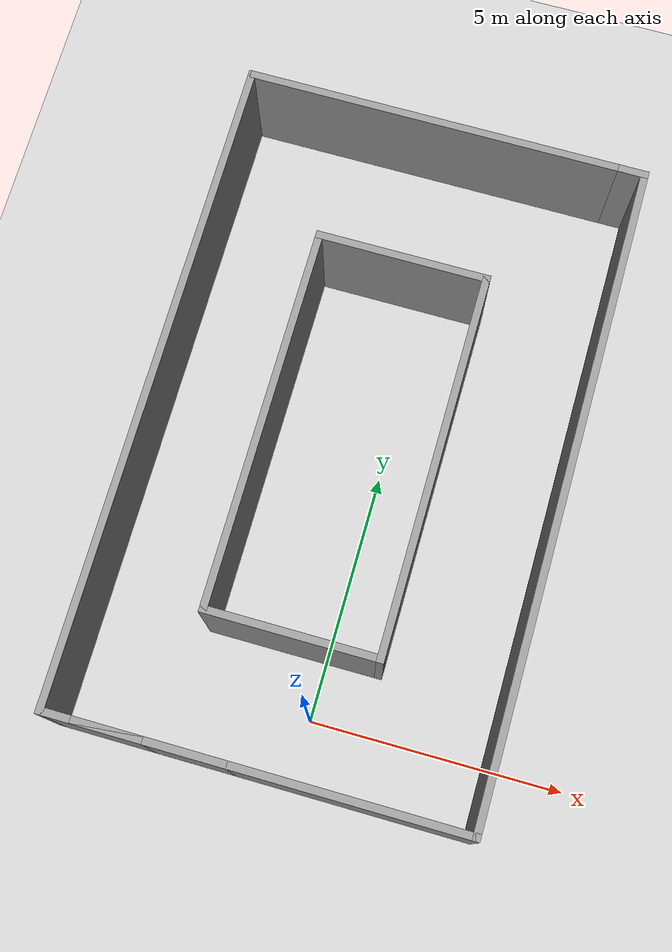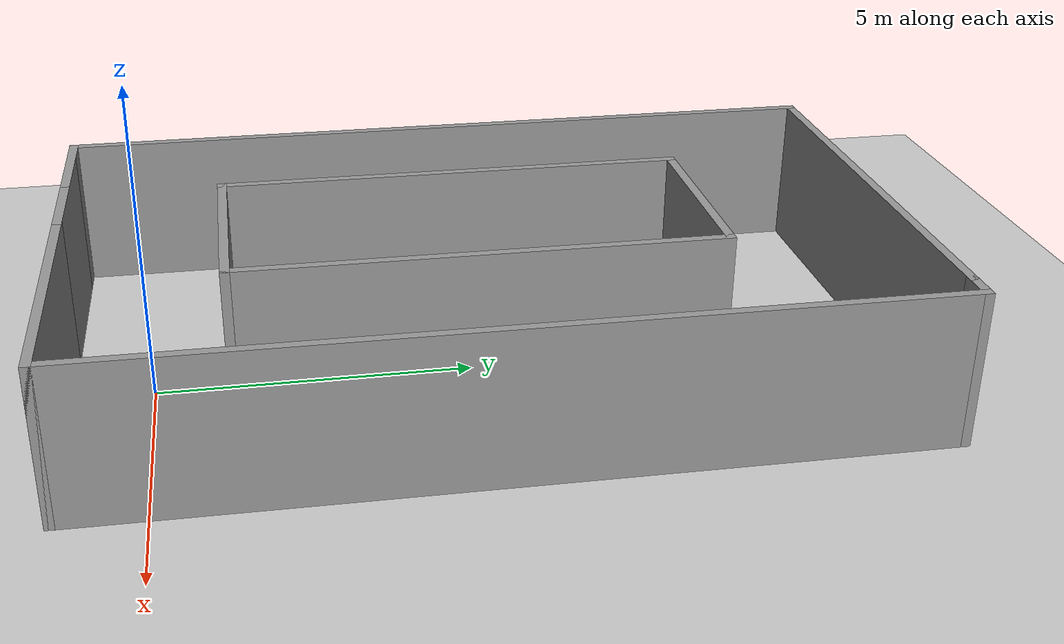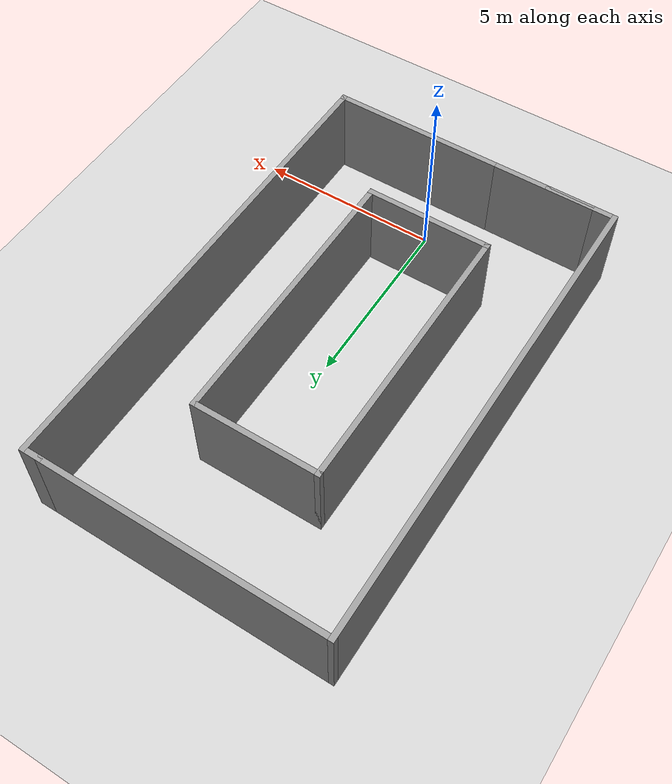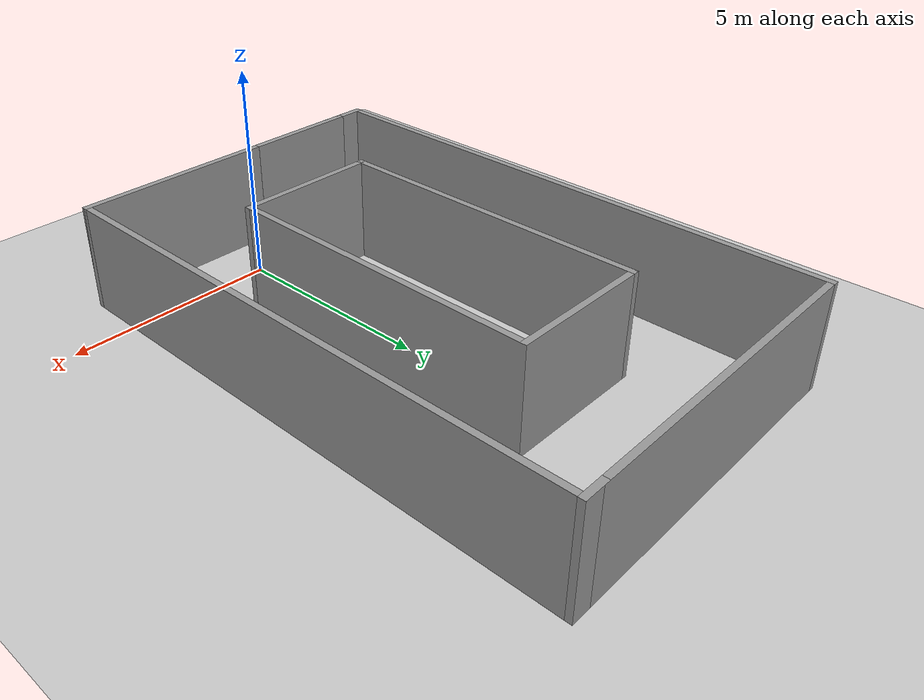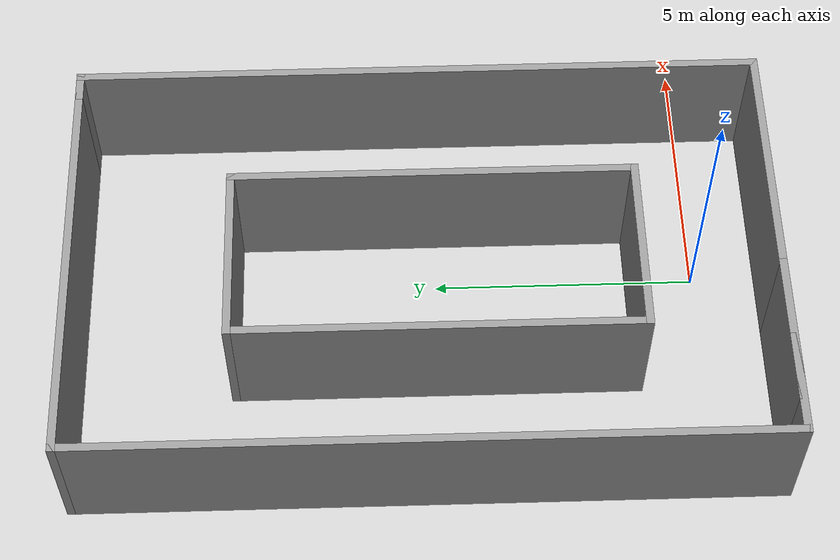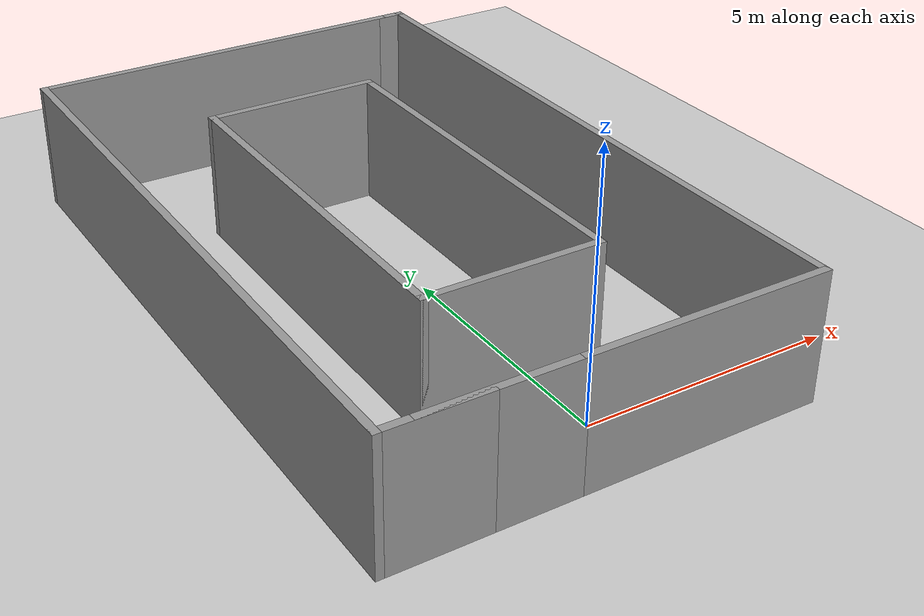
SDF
<sdf version="1.6">
 <world name="default">
  <light name="sun" type="directional">
   <pose>0 0 10 0 -0 0</pose>
   <diffuse>0.8 0.8 0.8 1</diffuse>
   <specular>0.2 0.2 0.2 1</specular>
   <attenuation>
    <range>1000</range>
    <constant>0.9</constant>
    <linear>0.01</linear>
    <quadratic>0.001</quadratic>
   </attenuation>
   <direction>-0.5 0.1 -0.9</direction>
  </light>
  <model name="ground_plane">
   <static>1</static>
   <link name="link">
    <collision name="collision">
     <geometry><plane><normal>0 0 1</normal><size>100 100</size></plane></geometry>
     <surface>
      <contact><collide_bitmask>65535</collide_bitmask></contact>
      <friction><ode><mu>100</mu><mu2>50</mu2></ode></friction>
     </surface>
    </collision>
    <visual name="visual">
     <cast_shadows>0</cast_shadows>
     <geometry><plane><normal>0 0 1</normal><size>100 100</size></plane></geometry>
     <material>
      <script><uri>file://media/materials/scripts/gazebo.material</uri><name>Gazebo/Grey</name></script>
     </material>
    </visual>
   </link>
  </model>
  <gravity>0 0 -9.8</gravity>
  <magnetic_field>6e-06 2.3e-05 -4.2e-05</magnetic_field>
  <atmosphere type="adiabatic"/>
  <physics name="default_physics" default="0" type="ode">
   <max_step_size>0.001</max_step_size>
   <real_time_factor>1</real_time_factor>
   <real_time_update_rate>1000</real_time_update_rate>
  </physics>
  <scene><ambient>0.4 0.4 0.4 1</ambient><background>0.7 0.7 0.7 1</background><shadows>1</shadows></scene>
  <audio><device>default</device></audio>
  <spherical_coordinates>
   <surface_model>EARTH_WGS84</surface_model>
   <latitude_deg>0</latitude_deg>
   <longitude_deg>0</longitude_deg>
   <elevation>0</elevation>
   <heading_deg>0</heading_deg>
  </spherical_coordinates>
  <model name="drug_!">
   <pose>-0.538753 5.24496 0 0 -0 1.56797</pose>
   <link name="Wall_0">
    <collision name="Wall_0_Collision">
     <geometry><box><size>2.91909 0.15 2.5</size></box></geometry>
     <pose>0 0 1.25 0 -0 0</pose>
    </collision>
    <visual name="Wall_0_Visual">
     <pose>0 0 1.25 0 -0 0</pose>
     <geometry><box><size>2.91909 0.15 2.5</size></box></geometry>
     <material>
      <script><uri>file://media/materials/scripts/gazebo.material</uri><name>Gazebo/Grey</name></script>
      <ambient>1 1 1 1</ambient>
     </material>
     <meta><layer>0</layer></meta>
    </visual>
    <pose>-6.55 1.99523 0 0 -0 -1.5708</pose>
   </link>
   <link name="Wall_1">
    <collision name="Wall_1_Collision">
     <geometry><box><size>4.75 0.15 2.5</size></box></geometry>
     <pose>0 0 1.25 0 -0 0</pose>
    </collision>
    <visual name="Wall_1_Visual">
     <pose>0 0 1.25 0 -0 0</pose>
     <geometry><box><size>4.75 0.15 2.5</size></box></geometry>
     <material>
      <script><uri>file://media/materials/scripts/gazebo.material</uri><name>Gazebo/Grey</name></script>
      <ambient>1 1 1 1</ambient>
     </material>
     <meta><layer>0</layer></meta>
    </visual>
    <pose>-6.55 -1.72977 0 0 -0 -1.5708</pose>
   </link>
   <link name="Wall_12">
    <collision name="Wall_12_Collision">
     <geometry><box><size>13.25 0.15 2.5</size></box></geometry>
     <pose>0 0 1.25 0 -0 0</pose>
    </collision>
    <visual name="Wall_12_Visual">
     <pose>0 0 1.25 0 -0 0</pose>
     <geometry><box><size>13.25 0.15 2.5</size></box></geometry>
     <material>
      <script><uri>file://media/materials/scripts/gazebo.material</uri><name>Gazebo/Grey</name></script>
      <ambient>1 1 1 1</ambient>
     </material>
     <meta><layer>0</layer></meta>
    </visual>
    <pose>-0 -4.02977 0 0 -0 0</pose>
   </link>
   <link name="Wall_13">
    <collision name="Wall_13_Collision">
     <geometry><box><size>0.609544 0.15 2.5</size></box></geometry>
     <pose>0 0 1.25 0 -0 0</pose>
    </collision>
    <visual name="Wall_13_Visual">
     <pose>0 0 1.25 0 -0 0</pose>
     <geometry><box><size>0.609544 0.15 2.5</size></box></geometry>
     <material>
      <script><uri>file://media/materials/scripts/gazebo.material</uri><name>Gazebo/Grey</name></script>
      <ambient>1 1 1 1</ambient>
     </material>
     <meta><layer>0</layer></meta>
    </visual>
    <pose>6.55 -3.8 0 0 -0 1.5708</pose>
   </link>
   <link name="Wall_17">
    <collision name="Wall_17_Collision">
     <geometry><box><size>3.5 0.15 2.5</size></box></geometry>
     <pose>0 0 1.25 0 -0 0</pose>
    </collision>
    <visual name="Wall_17_Visual">
     <pose>0 0 1.25 0 -0 0</pose>
     <geometry><box><size>3.5 0.15 2.5</size></box></geometry>
     <material>
      <script><uri>file://media/materials/scripts/gazebo.material</uri><name>Gazebo/Grey</name></script>
      <ambient>1 1 1 1</ambient>
     </material>
     <meta><layer>0</layer></meta>
    </visual>
    <pose>3.58738 0.091275 0 0 -0 1.5708</pose>
   </link>
   <link name="Wall_18">
    <collision name="Wall_18_Collision">
     <geometry><box><size>7.75 0.15 2.5</size></box></geometry>
     <pose>0 0 1.25 0 -0 0</pose>
    </collision>
    <visual name="Wall_18_Visual">
     <pose>0 0 1.25 0 -0 0</pose>
     <geometry><box><size>7.75 0.15 2.5</size></box></geometry>
     <material>
      <script><uri>file://media/materials/scripts/gazebo.material</uri><name>Gazebo/Grey</name></script>
      <ambient>1 1 1 1</ambient>
     </material>
     <meta><layer>0</layer></meta>
    </visual>
    <pose>-0.212625 1.76628 0 0 -0 3.14159</pose>
   </link>
   <link name="Wall_20">
    <collision name="Wall_20_Collision">
     <geometry><box><size>7.75 0.15 2.5</size></box></geometry>
     <pose>0 0 1.25 0 -0 0</pose>
    </collision>
    <visual name="Wall_20_Visual">
     <pose>0 0 1.25 0 -0 0</pose>
     <geometry><box><size>7.75 0.15 2.5</size></box></geometry>
     <material>
      <script><uri>file://media/materials/scripts/gazebo.material</uri><name>Gazebo/Grey</name></script>
      <ambient>1 1 1 1</ambient>
     </material>
     <meta><layer>0</layer></meta>
    </visual>
    <pose>-0.212625 -1.58373 0 0 -0 3.14159</pose>
   </link>
   <link name="Wall_21">
    <collision name="Wall_21_Collision">
     <geometry><box><size>3.5 0.15 2.5</size></box></geometry>
     <pose>0 0 1.25 0 -0 0</pose>
    </collision>
    <visual name="Wall_21_Visual">
     <pose>0 0 1.25 0 -0 0</pose>
     <geometry><box><size>3.5 0.15 2.5</size></box></geometry>
     <material>
      <script><uri>file://media/materials/scripts/gazebo.material</uri><name>Gazebo/Grey</name></script>
      <ambient>1 1 1 1</ambient>
     </material>
     <meta><layer>0</layer></meta>
    </visual>
    <pose>-4.01262 0.091275 0 0 -0 1.5708</pose>
   </link>
   <link name="Wall_3">
    <collision name="Wall_3_Collision">
     <geometry><box><size>7.75 0.15 2.5</size></box></geometry>
     <pose>0 0 1.25 0 -0 0</pose>
    </collision>
    <visual name="Wall_3_Visual">
     <pose>0 0 1.25 0 -0 0</pose>
     <geometry><box><size>7.75 0.15 2.5</size></box></geometry>
     <material>
      <script><uri>file://media/materials/scripts/gazebo.material</uri><name>Gazebo/Grey</name></script>
      <ambient>1 1 1 1</ambient>
     </material>
     <meta><layer>0</layer></meta>
    </visual>
    <pose>6.55 0.229772 0 0 -0 1.5708</pose>
   </link>
   <link name="Wall_4">
    <collision name="Wall_4_Collision">
     <geometry><box><size>13.25 0.15 2.5</size></box></geometry>
     <pose>0 0 1.25 0 -0 0</pose>
    </collision>
    <visual name="Wall_4_Visual">
     <pose>0 0 1.25 0 -0 0</pose>
     <geometry><box><size>13.25 0.15 2.5</size></box></geometry>
     <material>
      <script><uri>file://media/materials/scripts/gazebo.material</uri><name>Gazebo/Grey</name></script>
      <ambient>1 1 1 1</ambient>
     </material>
     <meta><layer>0</layer></meta>
    </visual>
    <pose>-0 4.02977 0 0 -0 3.14159</pose>
   </link>
   <link name="Wall_5">
    <collision name="Wall_5_Collision">
     <geometry><box><size>2 0.15 2.5</size></box></geometry>
     <pose>0 0 1.25 0 -0 0</pose>
    </collision>
    <visual name="Wall_5_Visual">
     <pose>0 0 1.25 0 -0 0</pose>
     <geometry><box><size>2 0.15 2.5</size></box></geometry>
     <material>
      <script><uri>file://media/materials/scripts/gazebo.material</uri><name>Gazebo/Grey</name></script>
      <ambient>1 1 1 1</ambient>
     </material>
     <meta><layer>0</layer></meta>
    </visual>
    <pose>-6.55 3.10477 0 0 -0 -1.5708</pose>
   </link>
   <static>1</static>
  </model>
 </world>
</sdf>
